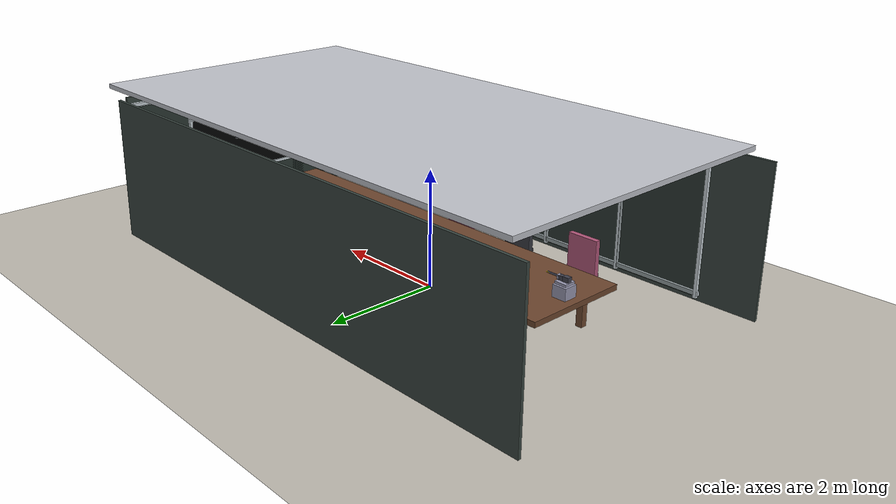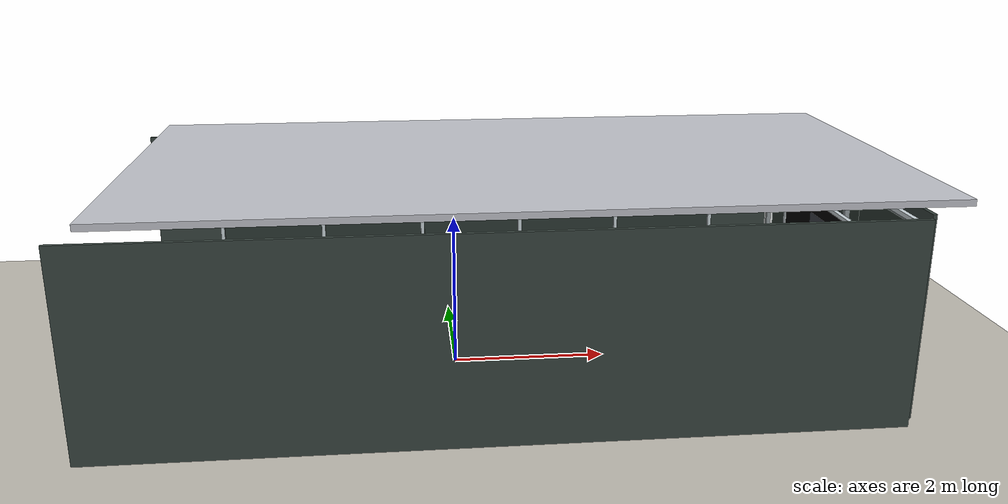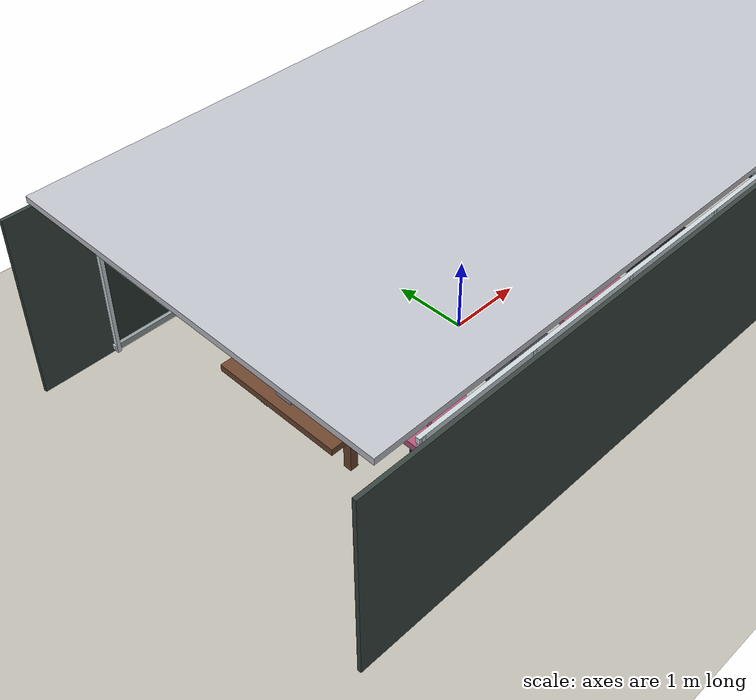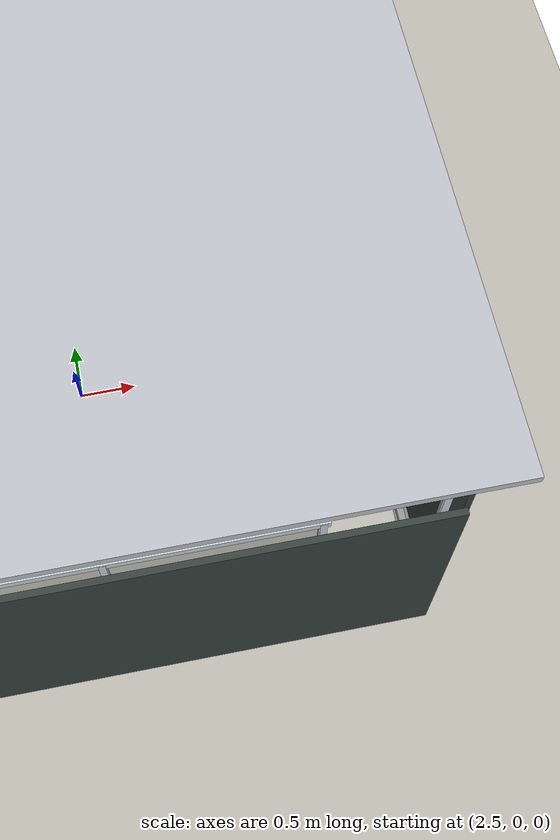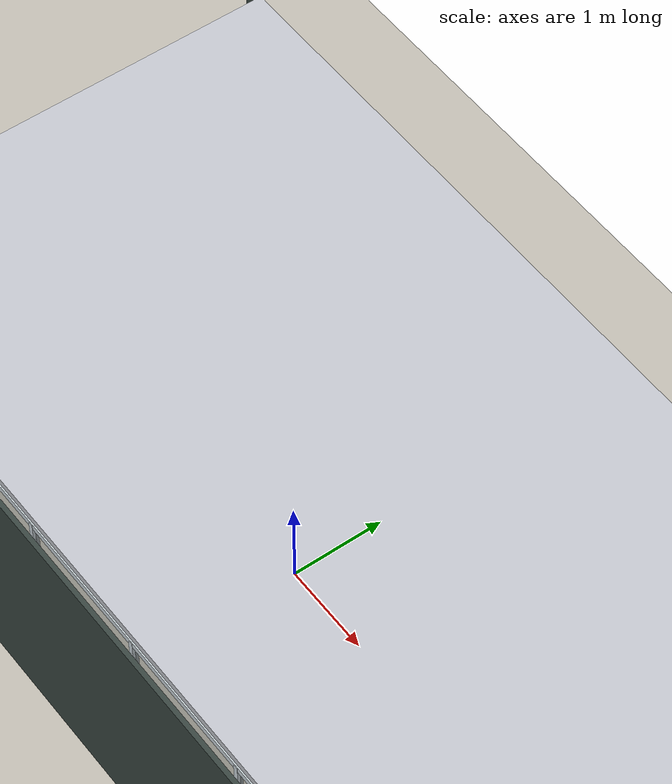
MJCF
<mujoco model="conference_room_with_launcher">
  <option gravity="0 0 -9.81" timestep="0.002"/>

  <visual>
    <headlight active="1" ambient="0.30 0.35 0.42" diffuse="0.62 0.68 0.78" specular="0.24 0.26 0.30"/>
    <quality shadowsize="4096"/>
    <map znear="0.01" zfar="50"/>
  </visual>

  <asset>
    <texture type="skybox" name="skybox" builtin="gradient" rgb1="0.22 0.27 0.25" rgb2="0.22 0.27 0.25" width="512" height="512"/>
    <texture type="2d" name="floor_tex" builtin="checker" rgb1="0.72 0.70 0.66" rgb2="0.78 0.77 0.73" width="512" height="512"/>
    <material name="floor_mat" texture="floor_tex" texrepeat="8 5" reflectance="0.14"/>
    <material name="wall_mat" rgba="0.78 0.83 0.84 1" reflectance="0.18"/>
    <material name="ceiling_mat" rgba="0.76 0.77 0.80 1" reflectance="0.12"/>
    <material name="glass_mat" rgba="0.12 0.16 0.14 0.28" reflectance="0.02"/>
    <material name="outside_view_mat" rgba="0.22 0.27 0.25 1" reflectance="0"/>
    <material name="frame_mat" rgba="0.80 0.84 0.86 1" reflectance="0.28"/>
    <material name="table_mat" rgba="0.43 0.273 0.18 1" reflectance="0"/>
    <material name="table_edge_mat" rgba="0.43 0.273 0.18 1" reflectance="0"/>
    <material name="chair_dark" rgba="0.08 0.08 0.10 1" reflectance="0.10"/>
    <material name="chair_gray" rgba="0.22 0.23 0.26 1" reflectance="0.12"/>
    <material name="chair_pink" rgba="0.70 0.34 0.48 1" reflectance="0.14"/>
    <material name="screen_mat" rgba="0.004 0.005 0.007 1" reflectance="0.18"/>
    <material name="screen_glare_mat" rgba="0.85 0.92 1.0 0.30" emission="0.18"/>
    <material name="light_mat" rgba="0.90 0.96 1.0 1" emission="0.72"/>
    <material name="target_mat" rgba="0.392 0.181 0.117 1" reflectance="0"/>
    <material name="metal" rgba="0.6 0.6 0.7 1"/>
    <material name="rubber" rgba="1 0.85 0.05 1"/>
    <material name="gun_mat" rgba="0.25 0.25 0.3 1"/>
  </asset>

  <default>
    <default class="launcher_visual">
      <geom contype="0" conaffinity="0"/>
    </default>
    <default class="chair_leg">
      <geom type="cylinder" size="0.025 0.28" material="chair_dark"/>
    </default>
  </default>

  <worldbody>
    <light name="ceiling_light_front" pos="3.1 0 2.55" dir="0 0 -1" diffuse="0.78 0.84 0.95" specular="0.30 0.32 0.38" cutoff="100"/>
    <light name="ceiling_light_mid" pos="0.6 0 2.55" dir="0 0 -1" diffuse="0.86 0.92 1.02" specular="0.32 0.34 0.40" cutoff="105"/>
    <light name="ceiling_light_back" pos="-2.2 0 2.55" dir="0 0 -1" diffuse="0.74 0.80 0.92" specular="0.28 0.30 0.36" cutoff="100"/>
    <light name="left_glass_reflection" pos="0 2.25 1.8" dir="0 -1 -0.15" diffuse="0.08 0.14 0.22" specular="0.08 0.11 0.16" cutoff="90"/>
    <light name="right_glass_reflection" pos="0 -2.25 1.8" dir="0 1 -0.15" diffuse="0.08 0.14 0.22" specular="0.08 0.11 0.16" cutoff="90"/>
    <light name="screen_fill_light" pos="4.55 0 2.05" dir="-1 0 -0.35" diffuse="0.38 0.46 0.60" specular="0.12 0.14 0.18" cutoff="85"/>

    <geom name="floor" type="plane" size="8 5 0.1" material="floor_mat"/>
    <geom name="ceiling" type="box" pos="0.8 0 2.75" size="4.8 2.55 0.04" material="ceiling_mat" contype="0" conaffinity="0"/>

    <geom name="left_outside_view" type="box" pos="0.4 2.62 1.35" size="4.7 0.025 1.25" material="outside_view_mat" contype="0" conaffinity="0"/>
    <geom name="right_outside_view" type="box" pos="0.4 -2.62 1.35" size="4.7 0.025 1.25" material="outside_view_mat" contype="0" conaffinity="0"/>
    <geom name="front_outside_view" type="box" pos="5.20 0 1.35" size="0.025 2.45 1.25" material="outside_view_mat" contype="0" conaffinity="0"/>

    <geom name="light_panel_back" type="box" pos="-2.0 0 2.695" size="0.82 0.105 0.012" material="light_mat" contype="0" conaffinity="0"/>
    <geom name="light_panel_mid" type="box" pos="0.75 0 2.695" size="0.95 0.105 0.012" material="light_mat" contype="0" conaffinity="0"/>
    <geom name="light_panel_front" type="box" pos="3.35 0 2.695" size="0.82 0.105 0.012" material="light_mat" contype="0" conaffinity="0"/>

    <geom name="front_glass_wall_left" type="box" pos="5.05 1.65 1.35" size="0.025 0.72 1.10" material="glass_mat"/>
    <geom name="front_glass_wall_mid_left" type="box" pos="5.05 0.82 1.35" size="0.025 0.36 1.10" material="glass_mat"/>
    <geom name="front_glass_wall_mid_right" type="box" pos="5.05 -0.82 1.35" size="0.025 0.36 1.10" material="glass_mat"/>
    <geom name="front_glass_wall_right" type="box" pos="5.05 -1.65 1.35" size="0.025 0.72 1.10" material="glass_mat"/>
    <geom name="front_frame_floor" type="box" pos="5.075 0 0.28" size="0.03 2.45 0.035" material="frame_mat"/>
    <geom name="front_frame_ceiling" type="box" pos="5.075 0 2.47" size="0.03 2.45 0.035" material="frame_mat"/>
    <geom name="front_frame_left" type="box" pos="5.075 2.37 1.35" size="0.03 0.025 1.15" material="frame_mat"/>
    <geom name="front_frame_mid_left" type="box" pos="5.075 0.45 1.35" size="0.03 0.025 1.15" material="frame_mat"/>
    <geom name="front_frame_mid_right" type="box" pos="5.075 -0.45 1.35" size="0.03 0.025 1.15" material="frame_mat"/>
    <geom name="front_frame_right" type="box" pos="5.075 -2.37 1.35" size="0.03 0.025 1.15" material="frame_mat"/>
    <geom name="front_screen" type="box" pos="4.985 0 1.45" size="0.025 1.34 0.57" material="screen_mat" contype="0" conaffinity="0"/>
    <geom name="front_screen_glare" type="box" pos="4.955 0 1.66" size="0.006 0.42 0.16" material="screen_glare_mat" contype="0" conaffinity="0"/>
    <geom name="front_screen_frame_top" type="box" pos="4.97 0 2.03" size="0.03 1.35 0.025" material="frame_mat" contype="0" conaffinity="0"/>
    <geom name="front_screen_frame_bottom" type="box" pos="4.97 0 0.87" size="0.03 1.35 0.025" material="frame_mat" contype="0" conaffinity="0"/>
    <geom name="front_screen_frame_left" type="box" pos="4.97 1.35 1.45" size="0.03 0.025 0.60" material="frame_mat" contype="0" conaffinity="0"/>
    <geom name="front_screen_frame_right" type="box" pos="4.97 -1.35 1.45" size="0.03 0.025 0.60" material="frame_mat" contype="0" conaffinity="0"/>

    <geom name="left_glass_wall_1" type="box" pos="-2.6 2.45 1.35" size="0.72 0.025 1.10" material="glass_mat"/>
    <geom name="left_glass_wall_2" type="box" pos="-1.1 2.45 1.35" size="0.72 0.025 1.10" material="glass_mat"/>
    <geom name="left_glass_wall_3" type="box" pos="0.4 2.45 1.35" size="0.72 0.025 1.10" material="glass_mat"/>
    <geom name="left_glass_wall_4" type="box" pos="1.9 2.45 1.35" size="0.72 0.025 1.10" material="glass_mat"/>
    <geom name="left_glass_wall_5" type="box" pos="3.4 2.45 1.35" size="0.72 0.025 1.10" material="glass_mat"/>
    <geom name="right_glass_wall_1" type="box" pos="-2.6 -2.45 1.35" size="0.72 0.025 1.10" material="glass_mat"/>
    <geom name="right_glass_wall_2" type="box" pos="-1.1 -2.45 1.35" size="0.72 0.025 1.10" material="glass_mat"/>
    <geom name="right_glass_wall_3" type="box" pos="0.4 -2.45 1.35" size="0.72 0.025 1.10" material="glass_mat"/>
    <geom name="right_glass_wall_4" type="box" pos="1.9 -2.45 1.35" size="0.72 0.025 1.10" material="glass_mat"/>
    <geom name="right_glass_wall_5" type="box" pos="3.4 -2.45 1.35" size="0.72 0.025 1.10" material="glass_mat"/>

    <geom name="left_frame_floor" type="box" pos="0.4 2.47 0.28" size="3.8 0.025 0.035" material="frame_mat"/>
    <geom name="left_frame_ceiling" type="box" pos="0.4 2.47 2.47" size="3.8 0.025 0.035" material="frame_mat"/>
    <geom name="right_frame_floor" type="box" pos="0.4 -2.47 0.28" size="3.8 0.025 0.035" material="frame_mat"/>
    <geom name="right_frame_ceiling" type="box" pos="0.4 -2.47 2.47" size="3.8 0.025 0.035" material="frame_mat"/>
    <geom name="left_frame_1" type="box" pos="-3.35 2.47 1.35" size="0.025 0.03 1.15" material="frame_mat"/>
    <geom name="left_frame_2" type="box" pos="-1.85 2.47 1.35" size="0.025 0.03 1.15" material="frame_mat"/>
    <geom name="left_frame_3" type="box" pos="-0.35 2.47 1.35" size="0.025 0.03 1.15" material="frame_mat"/>
    <geom name="left_frame_4" type="box" pos="1.15 2.47 1.35" size="0.025 0.03 1.15" material="frame_mat"/>
    <geom name="left_frame_5" type="box" pos="2.65 2.47 1.35" size="0.025 0.03 1.15" material="frame_mat"/>
    <geom name="left_frame_6" type="box" pos="4.15 2.47 1.35" size="0.025 0.03 1.15" material="frame_mat"/>
    <geom name="right_frame_1" type="box" pos="-3.35 -2.47 1.35" size="0.025 0.03 1.15" material="frame_mat"/>
    <geom name="right_frame_2" type="box" pos="-1.85 -2.47 1.35" size="0.025 0.03 1.15" material="frame_mat"/>
    <geom name="right_frame_3" type="box" pos="-0.35 -2.47 1.35" size="0.025 0.03 1.15" material="frame_mat"/>
    <geom name="right_frame_4" type="box" pos="1.15 -2.47 1.35" size="0.025 0.03 1.15" material="frame_mat"/>
    <geom name="right_frame_5" type="box" pos="2.65 -2.47 1.35" size="0.025 0.03 1.15" material="frame_mat"/>
    <geom name="right_frame_6" type="box" pos="4.15 -2.47 1.35" size="0.025 0.03 1.15" material="frame_mat"/>

    <body name="long_table" pos="0.6 0 0.75">
      <geom name="long_table_top" type="box" pos="0 0 0" size="3.6 0.9 0.045" material="table_mat"/>
      <geom name="table_leg_back_left" type="box" pos="-3.15 0.70 -0.39" size="0.055 0.055 0.34" material="table_edge_mat"/>
      <geom name="table_leg_back_right" type="box" pos="-3.15 -0.70 -0.39" size="0.055 0.055 0.34" material="table_edge_mat"/>
      <geom name="table_leg_front_left" type="box" pos="3.15 0.70 -0.39" size="0.055 0.055 0.34" material="table_edge_mat"/>
      <geom name="table_leg_front_right" type="box" pos="3.15 -0.70 -0.39" size="0.055 0.055 0.34" material="table_edge_mat"/>
    </body>

    <body name="target_object" mocap="true" pos="-1.20 0 0.805">
      <geom name="target_base_rect" type="box" pos="0 0 0" size="0.0054 0.045 0.018" material="target_mat"/>
      <geom name="target_stem" type="box" pos="0 0 0.054" size="0.0054 0.0135 0.036" material="target_mat"/>
      <geom name="target_round_head" type="sphere" pos="0 0 0.108" size="0.036" material="target_mat"/>
    </body>

    <body name="hit_effect" mocap="true" pos="0 0 -10">
      <geom name="hit_particle_0" type="sphere" pos="0 0 0" size="0.015" rgba="1 0.95 0.05 0" contype="0" conaffinity="0"/>
      <geom name="hit_particle_1" type="sphere" pos="0 0 0" size="0.012" rgba="1 0.55 0.05 0" contype="0" conaffinity="0"/>
      <geom name="hit_particle_2" type="sphere" pos="0 0 0" size="0.012" rgba="1 0.85 0.15 0" contype="0" conaffinity="0"/>
      <geom name="hit_particle_3" type="sphere" pos="0 0 0" size="0.011" rgba="1 0.35 0.05 0" contype="0" conaffinity="0"/>
      <geom name="hit_particle_4" type="sphere" pos="0 0 0" size="0.011" rgba="1 0.95 0.25 0" contype="0" conaffinity="0"/>
      <geom name="hit_particle_5" type="sphere" pos="0 0 0" size="0.010" rgba="1 0.55 0.05 0" contype="0" conaffinity="0"/>
      <geom name="hit_particle_6" type="sphere" pos="0 0 0" size="0.010" rgba="1 0.85 0.10 0" contype="0" conaffinity="0"/>
      <geom name="hit_particle_7" type="sphere" pos="0 0 0" size="0.009" rgba="1 0.40 0.05 0" contype="0" conaffinity="0"/>
      <geom name="hit_particle_8" type="sphere" pos="0 0 0" size="0.009" rgba="1 0.95 0.05 0" contype="0" conaffinity="0"/>
    </body>

    <body name="chair_left_1" pos="-1.9 1.35 0.43">
      <geom name="chair_left_1_seat" type="box" size="0.25 0.25 0.045" material="chair_dark"/>
      <geom name="chair_left_1_back" type="box" pos="0 0.16 0.31" size="0.27 0.045 0.31" material="chair_dark"/>
      <geom name="chair_left_1_leg_fl" class="chair_leg" pos="0.18 0.18 -0.24"/>
      <geom name="chair_left_1_leg_fr" class="chair_leg" pos="0.18 -0.18 -0.24"/>
      <geom name="chair_left_1_leg_bl" class="chair_leg" pos="-0.18 0.18 -0.24"/>
      <geom name="chair_left_1_leg_br" class="chair_leg" pos="-0.18 -0.18 -0.24"/>
    </body>
    <body name="chair_left_2" pos="-0.55 1.35 0.43">
      <geom name="chair_left_2_seat" type="box" size="0.25 0.25 0.045" material="chair_pink"/>
      <geom name="chair_left_2_back" type="box" pos="0 0.16 0.31" size="0.27 0.045 0.31" material="chair_pink"/>
      <geom name="chair_left_2_leg_fl" class="chair_leg" pos="0.18 0.18 -0.24"/>
      <geom name="chair_left_2_leg_fr" class="chair_leg" pos="0.18 -0.18 -0.24"/>
      <geom name="chair_left_2_leg_bl" class="chair_leg" pos="-0.18 0.18 -0.24"/>
      <geom name="chair_left_2_leg_br" class="chair_leg" pos="-0.18 -0.18 -0.24"/>
    </body>
    <body name="chair_left_3" pos="0.8 1.35 0.43">
      <geom name="chair_left_3_seat" type="box" size="0.25 0.25 0.045" material="chair_gray"/>
      <geom name="chair_left_3_back" type="box" pos="0 0.16 0.31" size="0.27 0.045 0.31" material="chair_gray"/>
      <geom name="chair_left_3_leg_fl" class="chair_leg" pos="0.18 0.18 -0.24"/>
      <geom name="chair_left_3_leg_fr" class="chair_leg" pos="0.18 -0.18 -0.24"/>
      <geom name="chair_left_3_leg_bl" class="chair_leg" pos="-0.18 0.18 -0.24"/>
      <geom name="chair_left_3_leg_br" class="chair_leg" pos="-0.18 -0.18 -0.24"/>
    </body>
    <body name="chair_left_4" pos="2.15 1.35 0.43">
      <geom name="chair_left_4_seat" type="box" size="0.25 0.25 0.045" material="chair_pink"/>
      <geom name="chair_left_4_back" type="box" pos="0 0.16 0.31" size="0.27 0.045 0.31" material="chair_pink"/>
      <geom name="chair_left_4_leg_fl" class="chair_leg" pos="0.18 0.18 -0.24"/>
      <geom name="chair_left_4_leg_fr" class="chair_leg" pos="0.18 -0.18 -0.24"/>
      <geom name="chair_left_4_leg_bl" class="chair_leg" pos="-0.18 0.18 -0.24"/>
      <geom name="chair_left_4_leg_br" class="chair_leg" pos="-0.18 -0.18 -0.24"/>
    </body>

    <body name="chair_right_1" pos="-1.9 -1.35 0.43">
      <geom name="chair_right_1_seat" type="box" size="0.25 0.25 0.045" material="chair_pink"/>
      <geom name="chair_right_1_back" type="box" pos="0 -0.16 0.31" size="0.27 0.045 0.31" material="chair_pink"/>
      <geom name="chair_right_1_leg_fl" class="chair_leg" pos="0.18 0.18 -0.24"/>
      <geom name="chair_right_1_leg_fr" class="chair_leg" pos="0.18 -0.18 -0.24"/>
      <geom name="chair_right_1_leg_bl" class="chair_leg" pos="-0.18 0.18 -0.24"/>
      <geom name="chair_right_1_leg_br" class="chair_leg" pos="-0.18 -0.18 -0.24"/>
    </body>
    <body name="chair_right_2" pos="-0.55 -1.35 0.43">
      <geom name="chair_right_2_seat" type="box" size="0.25 0.25 0.045" material="chair_gray"/>
      <geom name="chair_right_2_back" type="box" pos="0 -0.16 0.31" size="0.27 0.045 0.31" material="chair_gray"/>
      <geom name="chair_right_2_leg_fl" class="chair_leg" pos="0.18 0.18 -0.24"/>
      <geom name="chair_right_2_leg_fr" class="chair_leg" pos="0.18 -0.18 -0.24"/>
      <geom name="chair_right_2_leg_bl" class="chair_leg" pos="-0.18 0.18 -0.24"/>
      <geom name="chair_right_2_leg_br" class="chair_leg" pos="-0.18 -0.18 -0.24"/>
    </body>
    <body name="chair_right_3" pos="0.8 -1.35 0.43">
      <geom name="chair_right_3_seat" type="box" size="0.25 0.25 0.045" material="chair_pink"/>
      <geom name="chair_right_3_back" type="box" pos="0 -0.16 0.31" size="0.27 0.045 0.31" material="chair_pink"/>
      <geom name="chair_right_3_leg_fl" class="chair_leg" pos="0.18 0.18 -0.24"/>
      <geom name="chair_right_3_leg_fr" class="chair_leg" pos="0.18 -0.18 -0.24"/>
      <geom name="chair_right_3_leg_bl" class="chair_leg" pos="-0.18 0.18 -0.24"/>
      <geom name="chair_right_3_leg_br" class="chair_leg" pos="-0.18 -0.18 -0.24"/>
    </body>
    <body name="chair_right_4" pos="2.15 -1.35 0.43">
      <geom name="chair_right_4_seat" type="box" size="0.25 0.25 0.045" material="chair_dark"/>
      <geom name="chair_right_4_back" type="box" pos="0 -0.16 0.31" size="0.27 0.045 0.31" material="chair_dark"/>
      <geom name="chair_right_4_leg_fl" class="chair_leg" pos="0.18 0.18 -0.24"/>
      <geom name="chair_right_4_leg_fr" class="chair_leg" pos="0.18 -0.18 -0.24"/>
      <geom name="chair_right_4_leg_bl" class="chair_leg" pos="-0.18 0.18 -0.24"/>
      <geom name="chair_right_4_leg_br" class="chair_leg" pos="-0.18 -0.18 -0.24"/>
    </body>

    <body name="base" pos="-2.75 0 0.87">
      <geom name="base_box" class="launcher_visual" type="box" size="0.12 0.12 0.12" material="metal"/>

      <body name="yaw_stage" pos="0 0 0.15">
        <joint name="yaw_joint" type="hinge" axis="0 0 1" damping="2"/>
        <geom name="yaw_plate" class="launcher_visual" type="box" size="0.10 0.10 0.02" material="metal"/>

        <body name="gun_body" pos="0 0 0.05">
          <geom name="gun_rear" class="launcher_visual" type="box" size="0.05 0.04 0.05" pos="-0.04 0 0" material="gun_mat"/>
          <geom name="gun_mid" class="launcher_visual" type="box" size="0.06 0.035 0.04" pos="0.04 0 0" material="gun_mat"/>

          <body name="pitch_stage" pos="0.08 0 0.01">
            <joint name="pitch_joint" type="hinge" axis="0 1 0" damping="1.5"/>
            <geom name="pitch_block" class="launcher_visual" type="box" size="0.04 0.035 0.03" material="metal"/>

            <body name="barrel" pos="0.1 0 0">
              <geom name="barrel_geom" class="launcher_visual" type="capsule" fromto="-0.1 0 0  0.12 0 0" size="0.015" material="gun_mat"/>
              <site name="muzzle_site" pos="0.12 0 0" size="0.01" rgba="1 0 0 0.5"/>
              <camera name="aim_camera" pos="0.30 0 -0.13" xyaxes="0 -1 0  0 0 1" fovy="76"/>
            </body>
          </body>
        </body>
      </body>
    </body>

    <body name="rubber_projectile" pos="-2.45 0 1.08">
      <freejoint name="rubber_joint"/>
      <geom name="rb_1" type="capsule" fromto="-0.025  0.015 0   0.025  0.015 0" size="0.004" material="rubber" mass="0.003"/>
      <geom name="rb_2" type="capsule" fromto="-0.025 -0.015 0   0.025 -0.015 0" size="0.004" material="rubber" mass="0.003"/>
      <geom name="rb_3" type="capsule" fromto="-0.025 -0.015 0  -0.025  0.015 0" size="0.004" material="rubber" mass="0.003"/>
      <geom name="rb_4" type="capsule" fromto=" 0.025 -0.015 0   0.025  0.015 0" size="0.004" material="rubber" mass="0.003"/>
      <site name="proj_site" size="0.005"/>
    </body>
  </worldbody>

  <actuator>
    <position name="yaw_motor" joint="yaw_joint" kp="50" gear="1"/>
    <position name="pitch_motor" joint="pitch_joint" kp="40" gear="1"/>
  </actuator>
</mujoco>
